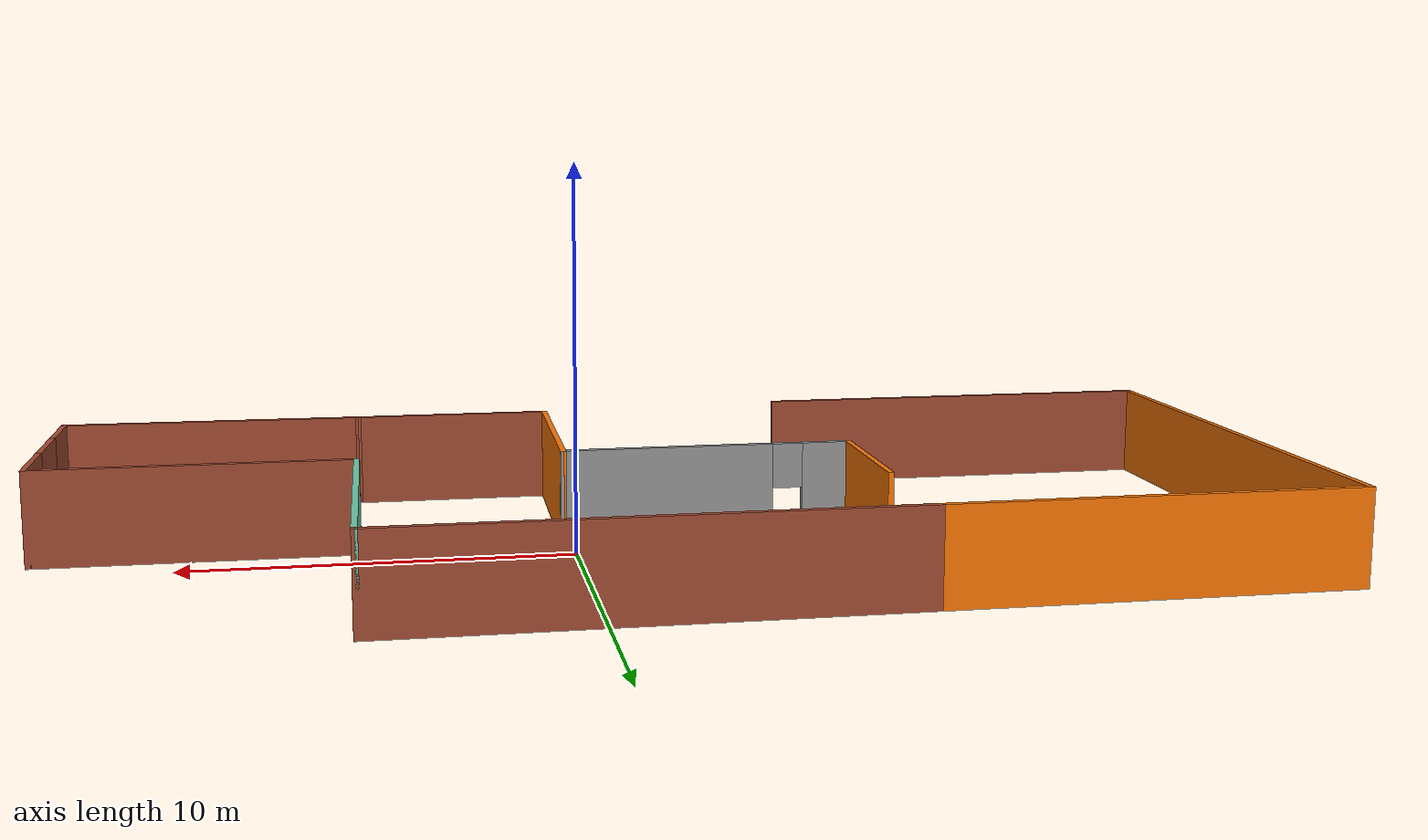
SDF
<?xml version='1.0'?>
<sdf version='1.6'>
  <model name='house_robot'>
    <pose frame=''>-2.30388 -0.578559 0 0 -0 0</pose>
    <link name='Door_0'>
      <collision name='Door_0_Collision'>
        <geometry>
          <box>
            <size>0.9 0.17 2</size>
          </box>
        </geometry>
        <pose frame=''>0 0 1 0 -0 0</pose>
      </collision>
      <visual name='Door_0_Visual'>
        <pose frame=''>0 0 1 0 -0 0</pose>
        <geometry>
          <box>
            <size>0.9 0.17 2</size>
          </box>
        </geometry>
        <material>
          <script>
            <uri>file://media/materials/scripts/gazebo.material</uri>
            <name>Gazebo/Grey</name>
          </script>
        </material>
      </visual>
      <pose frame=''>-6.12173 -6.79995 0 0 -0 0</pose>
    </link>
    <link name='Wall_0'>
      <collision name='Wall_0_Collision'>
        <geometry>
          <box>
            <size>13.25 0.15 2.5</size>
          </box>
        </geometry>
        <pose frame=''>0 0 1.25 0 -0 0</pose>
      </collision>
      <visual name='Wall_0_Visual'>
        <pose frame=''>0 0 1.25 0 -0 0</pose>
        <geometry>
          <box>
            <size>13.25 0.15 2.5</size>
          </box>
        </geometry>
        <material>
          <script>
            <uri>file://media/materials/scripts/gazebo.material</uri>
            <name>Gazebo/Bricks</name>
          </script>
          <ambient>1 1 1 1</ambient>
        </material>
      </visual>
      <pose frame=''>1.24954 6.675 0 0 -0 0</pose>
    </link>
    <link name='Wall_10'>
      <collision name='Wall_10_Collision'>
        <geometry>
          <box>
            <size>8.25 0.15 2.5</size>
          </box>
        </geometry>
        <pose frame=''>0 0 1.25 0 -0 0</pose>
      </collision>
      <visual name='Wall_10_Visual'>
        <pose frame=''>0 0 1.25 0 -0 0</pose>
        <geometry>
          <box>
            <size>8.25 0.15 2.5</size>
          </box>
        </geometry>
        <material>
          <script>
            <uri>file://media/materials/scripts/gazebo.material</uri>
            <name>Gazebo/Bricks</name>
          </script>
          <ambient>1 1 1 1</ambient>
        </material>
      </visual>
      <pose frame=''>11.8495 -0.425 0 0 -0 0</pose>
    </link>
    <link name='Wall_11'>
      <pose frame=''>15.8995 -3.35 0 0 0 -1.5708</pose>
      <visual name='Wall_11_Visual_0'>
        <pose frame=''>-1.93278 0 1.25 0 -0 0</pose>
        <geometry>
          <box>
            <size>2.13444 0.15 2.5</size>
          </box>
        </geometry>
        <material>
          <script>
            <uri>file://media/materials/scripts/gazebo.material</uri>
            <name>Gazebo/Bricks</name>
          </script>
          <ambient>1 1 1 1</ambient>
        </material>
      </visual>
      <collision name='Wall_11_Collision_0'>
        <geometry>
          <box>
            <size>2.13444 0.15 2.5</size>
          </box>
        </geometry>
        <pose frame=''>-1.93278 0 1.25 0 -0 0</pose>
      </collision>
      <visual name='Wall_11_Visual_1'>
        <pose frame=''>1.06722 0 0.25 0 -0 0</pose>
        <geometry>
          <box>
            <size>3.86556 0.15 0.5</size>
          </box>
        </geometry>
        <material>
          <script>
            <uri>file://media/materials/scripts/gazebo.material</uri>
            <name>Gazebo/Bricks</name>
          </script>
          <ambient>1 1 1 1</ambient>
        </material>
      </visual>
      <collision name='Wall_11_Collision_1'>
        <geometry>
          <box>
            <size>3.86556 0.15 0.5</size>
          </box>
        </geometry>
        <pose frame=''>1.06722 0 0.25 0 -0 0</pose>
      </collision>
      <visual name='Wall_11_Visual_2'>
        <pose frame=''>2.06722 0 1.5 0 -0 0</pose>
        <geometry>
          <box>
            <size>1.86556 0.15 2</size>
          </box>
        </geometry>
        <material>
          <script>
            <uri>file://media/materials/scripts/gazebo.material</uri>
            <name>Gazebo/Bricks</name>
          </script>
          <ambient>1 1 1 1</ambient>
        </material>
      </visual>
      <collision name='Wall_11_Collision_2'>
        <geometry>
          <box>
            <size>1.86556 0.15 2</size>
          </box>
        </geometry>
        <pose frame=''>2.06722 0 1.5 0 -0 0</pose>
      </collision>
      <visual name='Wall_11_Visual_3'>
        <pose frame=''>0.134445 0 1.9 0 -0 0</pose>
        <geometry>
          <box>
            <size>2 0.15 1.2</size>
          </box>
        </geometry>
        <material>
          <script>
            <uri>file://media/materials/scripts/gazebo.material</uri>
            <name>Gazebo/Bricks</name>
          </script>
          <ambient>1 1 1 1</ambient>
        </material>
      </visual>
      <collision name='Wall_11_Collision_3'>
        <geometry>
          <box>
            <size>2 0.15 1.2</size>
          </box>
        </geometry>
        <pose frame=''>0.134445 0 1.9 0 -0 0</pose>
      </collision>
    </link>
    <link name='Wall_12'>
      <collision name='Wall_12_Collision'>
        <geometry>
          <box>
            <size>8.25062 0.15 2.5</size>
          </box>
        </geometry>
        <pose frame=''>0 0 1.25 0 -0 0</pose>
      </collision>
      <visual name='Wall_12_Visual'>
        <pose frame=''>0 0 1.25 0 -0 0</pose>
        <geometry>
          <box>
            <size>8.25062 0.15 2.5</size>
          </box>
        </geometry>
        <material>
          <script>
            <uri>file://media/materials/scripts/gazebo.material</uri>
            <name>Gazebo/Bricks</name>
          </script>
          <ambient>1 1 1 1</ambient>
        </material>
      </visual>
      <pose frame=''>11.8495 -6.225 0 0 -0 3.12925</pose>
    </link>
    <link name='Wall_14'>
      <collision name='Wall_14_Collision'>
        <geometry>
          <box>
            <size>10.75 0.15 2.5</size>
          </box>
        </geometry>
        <pose frame=''>0 0 1.25 0 -0 0</pose>
      </collision>
      <visual name='Wall_14_Visual'>
        <pose frame=''>0 0 1.25 0 -0 0</pose>
        <geometry>
          <box>
            <size>10.75 0.15 2.5</size>
          </box>
        </geometry>
        <material>
          <script>
            <uri>file://media/materials/scripts/gazebo.material</uri>
            <name>Gazebo/Grey</name>
          </script>
          <ambient>0.996078 0.47451 0.0196078 1</ambient>
        </material>
      </visual>
      <pose frame=''>-10.6005 6.675 0 0 -0 3.14159</pose>
    </link>
    <link name='Wall_15'>
      <collision name='Wall_15_Collision'>
        <geometry>
          <box>
            <size>13.5 0.15 2.5</size>
          </box>
        </geometry>
        <pose frame=''>0 0 1.25 0 -0 0</pose>
      </collision>
      <visual name='Wall_15_Visual'>
        <pose frame=''>0 0 1.25 0 -0 0</pose>
        <geometry>
          <box>
            <size>13.5 0.15 2.5</size>
          </box>
        </geometry>
        <material>
          <script>
            <uri>file://media/materials/scripts/gazebo.material</uri>
            <name>Gazebo/Grey</name>
          </script>
          <ambient>0.996078 0.47451 0.0196078 1</ambient>
        </material>
      </visual>
      <pose frame=''>-15.9005 0 0 0 0 -1.5708</pose>
    </link>
    <link name='Wall_16'>
      <collision name='Wall_16_Collision'>
        <geometry>
          <box>
            <size>11.5 0.15 2.5</size>
          </box>
        </geometry>
        <pose frame=''>0 0 1.25 0 -0 0</pose>
      </collision>
      <visual name='Wall_16_Visual'>
        <pose frame=''>0 0 1.25 0 -0 0</pose>
        <geometry>
          <box>
            <size>11.5 0.15 2.5</size>
          </box>
        </geometry>
        <material>
          <script>
            <uri>file://media/materials/scripts/gazebo.material</uri>
            <name>Gazebo/Bricks</name>
          </script>
          <ambient>1 1 1 1</ambient>
        </material>
      </visual>
      <pose frame=''>-10.2255 -6.675 0 0 -0 0</pose>
    </link>
    <link name='Wall_2'>
      <collision name='Wall_2_Collision'>
        <geometry>
          <box>
            <size>5.5 0.15 2.5</size>
          </box>
        </geometry>
        <pose frame=''>0 0 1.25 0 -0 0</pose>
      </collision>
      <visual name='Wall_2_Visual'>
        <pose frame=''>0 0 1.25 0 -0 0</pose>
        <geometry>
          <box>
            <size>5.5 0.15 2.5</size>
          </box>
        </geometry>
        <material>
          <script>
            <uri>file://media/materials/scripts/gazebo.material</uri>
            <name>Gazebo/Bricks</name>
          </script>
          <ambient>1 1 1 1</ambient>
        </material>
      </visual>
      <pose frame=''>5.12454 -6.175 0 0 -0 3.14159</pose>
    </link>
    <link name='Wall_3'>
      <collision name='Wall_3_Collision'>
        <geometry>
          <box>
            <size>5.75 0.15 2.5</size>
          </box>
        </geometry>
        <pose frame=''>0 0 1.25 0 -0 0</pose>
      </collision>
      <visual name='Wall_3_Visual'>
        <pose frame=''>0 0 1.25 0 -0 0</pose>
        <geometry>
          <box>
            <size>5.75 0.15 2.5</size>
          </box>
        </geometry>
        <material>
          <script>
            <uri>file://media/materials/scripts/gazebo.material</uri>
            <name>Gazebo/Grey</name>
          </script>
          <ambient>0.996078 0.47451 0.0196078 1</ambient>
        </material>
      </visual>
      <pose frame=''>2.47996 -3.375 0 0 -0 1.55993</pose>
    </link>
    <link name='Wall_4'>
      <pose frame=''>-1.32004 -0.575 0 0 -0 3.14159</pose>
      <visual name='Wall_4_Visual_0'>
        <pose frame=''>-1.07502 0 1.25 0 -0 0</pose>
        <geometry>
          <box>
            <size>5.66078 0.15 2.5</size>
          </box>
        </geometry>
        <material>
          <script>
            <uri>file://media/materials/scripts/gazebo.material</uri>
            <name>Gazebo/Grey</name>
          </script>
          <ambient>1 1 1 1</ambient>
        </material>
      </visual>
      <collision name='Wall_4_Collision_0'>
        <geometry>
          <box>
            <size>5.66078 0.15 2.5</size>
          </box>
        </geometry>
        <pose frame=''>-1.07502 0 1.25 0 -0 0</pose>
      </collision>
      <visual name='Wall_4_Visual_1'>
        <pose frame=''>2.83039 0 0.25 0 -0 0</pose>
        <geometry>
          <box>
            <size>2.15005 0.15 0.5</size>
          </box>
        </geometry>
        <material>
          <script>
            <uri>file://media/materials/scripts/gazebo.material</uri>
            <name>Gazebo/Grey</name>
          </script>
          <ambient>1 1 1 1</ambient>
        </material>
      </visual>
      <collision name='Wall_4_Collision_1'>
        <geometry>
          <box>
            <size>2.15005 0.15 0.5</size>
          </box>
        </geometry>
        <pose frame=''>2.83039 0 0.25 0 -0 0</pose>
      </collision>
      <visual name='Wall_4_Visual_2'>
        <pose frame=''>3.23039 0 1.5 0 -0 0</pose>
        <geometry>
          <box>
            <size>1.35005 0.15 2</size>
          </box>
        </geometry>
        <material>
          <script>
            <uri>file://media/materials/scripts/gazebo.material</uri>
            <name>Gazebo/Grey</name>
          </script>
          <ambient>1 1 1 1</ambient>
        </material>
      </visual>
      <collision name='Wall_4_Collision_2'>
        <geometry>
          <box>
            <size>1.35005 0.15 2</size>
          </box>
        </geometry>
        <pose frame=''>3.23039 0 1.5 0 -0 0</pose>
      </collision>
      <visual name='Wall_4_Visual_3'>
        <pose frame=''>2.15537 0 1.9 0 -0 0</pose>
        <geometry>
          <box>
            <size>0.8 0.15 1.2</size>
          </box>
        </geometry>
        <material>
          <script>
            <uri>file://media/materials/scripts/gazebo.material</uri>
            <name>Gazebo/Grey</name>
          </script>
          <ambient>1 1 1 1</ambient>
        </material>
      </visual>
      <collision name='Wall_4_Collision_3'>
        <geometry>
          <box>
            <size>0.8 0.15 1.2</size>
          </box>
        </geometry>
        <pose frame=''>2.15537 0 1.9 0 -0 0</pose>
      </collision>
    </link>
    <link name='Wall_5'>
      <collision name='Wall_5_Collision'>
        <geometry>
          <box>
            <size>4 0.15 2.5</size>
          </box>
        </geometry>
        <pose frame=''>0 0 1.25 0 -0 0</pose>
      </collision>
      <visual name='Wall_5_Visual'>
        <pose frame=''>0 0 1.25 0 -0 0</pose>
        <geometry>
          <box>
            <size>4 0.15 2.5</size>
          </box>
        </geometry>
        <material>
          <script>
            <uri>file://media/materials/scripts/gazebo.material</uri>
            <name>Gazebo/Grey</name>
          </script>
          <ambient>0.996078 0.47451 0.0196078 1</ambient>
        </material>
      </visual>
      <pose frame=''>-5.15046 1.35 0 0 -0 1.5708</pose>
    </link>
    <link name='Wall_9'>
      <collision name='Wall_9_Collision'>
        <geometry>
          <box>
            <size>7.25 0.15 2.5</size>
          </box>
        </geometry>
        <pose frame=''>0 0 1.25 0 -0 0</pose>
      </collision>
      <visual name='Wall_9_Visual'>
        <pose frame=''>0 0 1.25 0 -0 0</pose>
        <geometry>
          <box>
            <size>7.25 0.15 2.5</size>
          </box>
        </geometry>
        <material>
          <script>
            <uri>file://media/materials/scripts/gazebo.material</uri>
            <name>Gazebo/Grey</name>
          </script>
          <ambient>0.435294 0.796078 0.67451 1</ambient>
        </material>
      </visual>
      <pose frame=''>7.79954 3.125 0 0 0 -1.5708</pose>
    </link>
    <static>1</static>
  </model>
</sdf>
